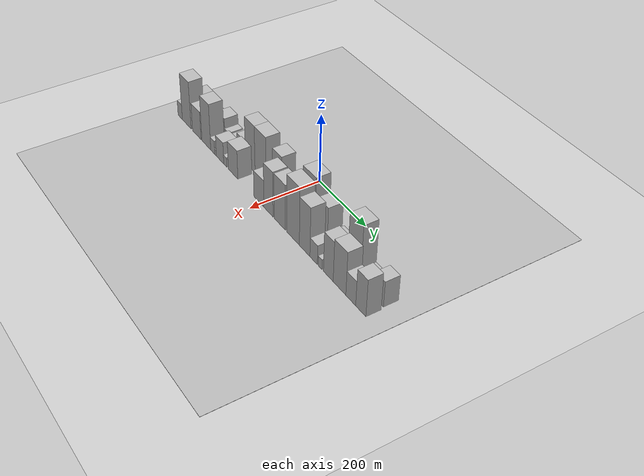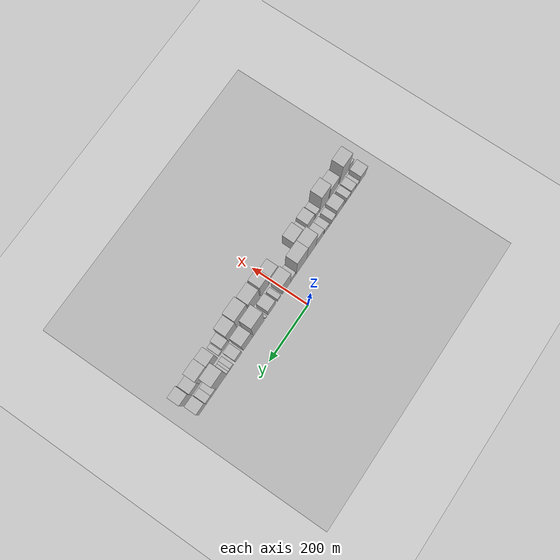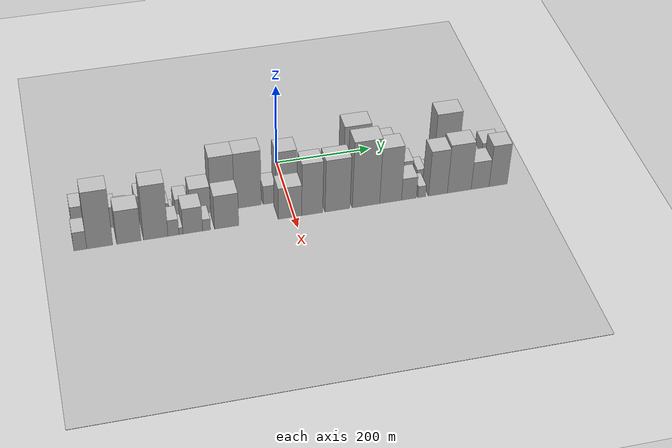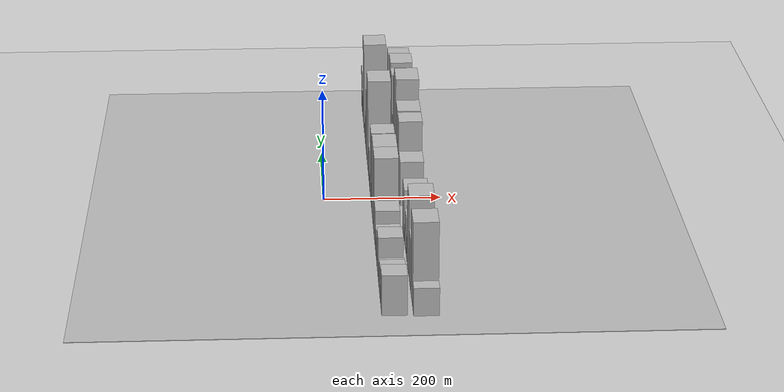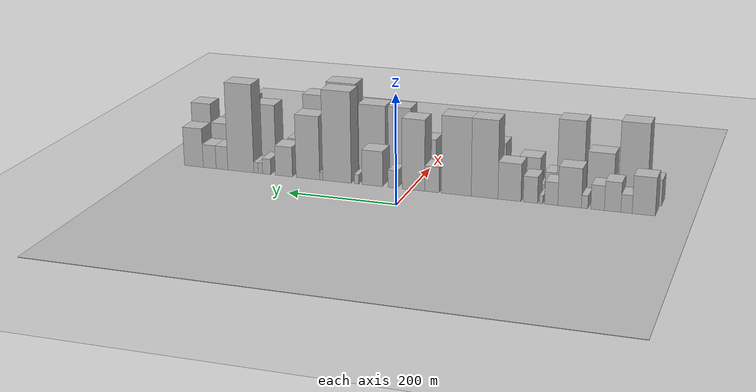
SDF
<sdf version="1.6">
 <world name="default">
  <include><name>ground_plane_1</name><uri>model://HANNAS_ground_plane</uri></include>
  <include>
   <name>ground_plane_2</name>
   <uri>model://HANNAS_ground_plane</uri>
   <pose>100 0 0  0 0 0</pose>
  </include>
  <model name="building_1">
   <static>1</static>
   <pose>100.0000 -415.2941 0 0.000000 0.000000 0.000000</pose>
   <link name="link">
    <pose>0 0 34.50 0 0 0</pose>
    <collision name="collision"><geometry><box><size>40.0000 39.4119 69.0000</size></box></geometry></collision>
    <visual name="visual">
     <cast_shadows>0</cast_shadows>
     <geometry><box><size>40.0000 39.4119 69.0000</size></box></geometry>
     <material>
      <script>
       <uri>model://HANNAS_wall/materials/scripts</uri>
       <uri>model://HANNAS_wall/materials/textures</uri>
       <name>vrc/HANNAS_wall</name>
      </script>
     </material>
    </visual>
   </link>
  </model>
  <model name="building_2">
   <static>1</static>
   <pose>100.0000 -385.9429 0 0.000000 0.000000 0.000000</pose>
   <link name="link">
    <pose>0 0 16.50 0 0 0</pose>
    <collision name="collision"><geometry><box><size>40.0000 19.2904 33.0000</size></box></geometry></collision>
    <visual name="visual">
     <cast_shadows>0</cast_shadows>
     <geometry><box><size>40.0000 19.2904 33.0000</size></box></geometry>
     <material>
      <script>
       <uri>model://HANNAS_wall/materials/scripts</uri>
       <uri>model://HANNAS_wall/materials/textures</uri>
       <name>vrc/HANNAS_wall</name>
      </script>
     </material>
    </visual>
   </link>
  </model>
  <model name="building_3">
   <static>1</static>
   <pose>100.0000 -362.1406 0 0.000000 0.000000 0.000000</pose>
   <link name="link">
    <pose>0 0 27.00 0 0 0</pose>
    <collision name="collision"><geometry><box><size>40.0000 28.3142 54.0000</size></box></geometry></collision>
    <visual name="visual">
     <cast_shadows>0</cast_shadows>
     <geometry><box><size>40.0000 28.3142 54.0000</size></box></geometry>
     <material>
      <script>
       <uri>model://HANNAS_wall/materials/scripts</uri>
       <uri>model://HANNAS_wall/materials/textures</uri>
       <name>vrc/HANNAS_wall</name>
      </script>
     </material>
    </visual>
   </link>
  </model>
  <model name="building_4">
   <static>1</static>
   <pose>100.0000 -336.1163 0 0.000000 0.000000 0.000000</pose>
   <link name="link">
    <pose>0 0 22.50 0 0 0</pose>
    <collision name="collision"><geometry><box><size>40.0000 23.7343 45.0000</size></box></geometry></collision>
    <visual name="visual">
     <cast_shadows>0</cast_shadows>
     <geometry><box><size>40.0000 23.7343 45.0000</size></box></geometry>
     <material>
      <script>
       <uri>model://HANNAS_wall/materials/scripts</uri>
       <uri>model://HANNAS_wall/materials/textures</uri>
       <name>vrc/HANNAS_wall</name>
      </script>
     </material>
    </visual>
   </link>
  </model>
  <model name="building_5">
   <static>1</static>
   <pose>100.0000 -313.6387 0 0.000000 0.000000 0.000000</pose>
   <link name="link">
    <pose>0 0 12.00 0 0 0</pose>
    <collision name="collision"><geometry><box><size>40.0000 11.2210 24.0000</size></box></geometry></collision>
    <visual name="visual">
     <cast_shadows>0</cast_shadows>
     <geometry><box><size>40.0000 11.2210 24.0000</size></box></geometry>
     <material>
      <script>
       <uri>model://HANNAS_wall/materials/scripts</uri>
       <uri>model://HANNAS_wall/materials/textures</uri>
       <name>vrc/HANNAS_wall</name>
      </script>
     </material>
    </visual>
   </link>
  </model>
  <model name="building_6">
   <static>1</static>
   <pose>100.0000 -287.4100 0 0.000000 0.000000 0.000000</pose>
   <link name="link">
    <pose>0 0 36.00 0 0 0</pose>
    <collision name="collision"><geometry><box><size>40.0000 41.2364 72.0000</size></box></geometry></collision>
    <visual name="visual">
     <cast_shadows>0</cast_shadows>
     <geometry><box><size>40.0000 41.2364 72.0000</size></box></geometry>
     <material>
      <script>
       <uri>model://HANNAS_wall/materials/scripts</uri>
       <uri>model://HANNAS_wall/materials/textures</uri>
       <name>vrc/HANNAS_wall</name>
      </script>
     </material>
    </visual>
   </link>
  </model>
  <model name="building_7">
   <static>1</static>
   <pose>100.0000 -255.0914 0 0.000000 0.000000 0.000000</pose>
   <link name="link">
    <pose>0 0 21.00 0 0 0</pose>
    <collision name="collision"><geometry><box><size>40.0000 23.4007 42.0000</size></box></geometry></collision>
    <visual name="visual">
     <cast_shadows>0</cast_shadows>
     <geometry><box><size>40.0000 23.4007 42.0000</size></box></geometry>
     <material>
      <script>
       <uri>model://HANNAS_wall/materials/scripts</uri>
       <uri>model://HANNAS_wall/materials/textures</uri>
       <name>vrc/HANNAS_wall</name>
      </script>
     </material>
    </visual>
   </link>
  </model>
  <model name="building_8">
   <static>1</static>
   <pose>100.0000 -237.1091 0 0.000000 0.000000 0.000000</pose>
   <link name="link">
    <pose>0 0 7.50 0 0 0</pose>
    <collision name="collision"><geometry><box><size>40.0000 6.5640 15.0000</size></box></geometry></collision>
    <visual name="visual">
     <cast_shadows>0</cast_shadows>
     <geometry><box><size>40.0000 6.5640 15.0000</size></box></geometry>
     <material>
      <script>
       <uri>model://HANNAS_wall/materials/scripts</uri>
       <uri>model://HANNAS_wall/materials/textures</uri>
       <name>vrc/HANNAS_wall</name>
      </script>
     </material>
    </visual>
   </link>
  </model>
  <model name="building_9">
   <static>1</static>
   <pose>100.0000 -218.1430 0 0.000000 0.000000 0.000000</pose>
   <link name="link">
    <pose>0 0 24.00 0 0 0</pose>
    <collision name="collision"><geometry><box><size>40.0000 25.3681 48.0000</size></box></geometry></collision>
    <visual name="visual">
     <cast_shadows>0</cast_shadows>
     <geometry><box><size>40.0000 25.3681 48.0000</size></box></geometry>
     <material>
      <script>
       <uri>model://HANNAS_wall/materials/scripts</uri>
       <uri>model://HANNAS_wall/materials/textures</uri>
       <name>vrc/HANNAS_wall</name>
      </script>
     </material>
    </visual>
   </link>
  </model>
  <model name="building_10">
   <static>1</static>
   <pose>100.0000 -180.8574 0 0.000000 0.000000 0.000000</pose>
   <link name="link">
    <pose>0 0 34.50 0 0 0</pose>
    <collision name="collision"><geometry><box><size>40.0000 41.2031 69.0000</size></box></geometry></collision>
    <visual name="visual">
     <cast_shadows>0</cast_shadows>
     <geometry><box><size>40.0000 41.2031 69.0000</size></box></geometry>
     <material>
      <script>
       <uri>model://HANNAS_wall/materials/scripts</uri>
       <uri>model://HANNAS_wall/materials/textures</uri>
       <name>vrc/HANNAS_wall</name>
      </script>
     </material>
    </visual>
   </link>
  </model>
  <model name="building_11">
   <static>1</static>
   <pose>100.0000 -136.1035 0 0.000000 0.000000 0.000000</pose>
   <link name="link">
    <pose>0 0 72.00 0 0 0</pose>
    <collision name="collision"><geometry><box><size>40.0000 48.3046 144.0000</size></box></geometry></collision>
    <visual name="visual">
     <cast_shadows>0</cast_shadows>
     <geometry><box><size>40.0000 48.3046 144.0000</size></box></geometry>
     <material>
      <script>
       <uri>model://HANNAS_wall/materials/scripts</uri>
       <uri>model://HANNAS_wall/materials/textures</uri>
       <name>vrc/HANNAS_wall</name>
      </script>
     </material>
    </visual>
   </link>
  </model>
  <model name="building_12">
   <static>1</static>
   <pose>100.0000 -84.6063 0 0.000000 0.000000 0.000000</pose>
   <link name="link">
    <pose>0 0 72.00 0 0 0</pose>
    <collision name="collision"><geometry><box><size>40.0000 54.6897 144.0000</size></box></geometry></collision>
    <visual name="visual">
     <cast_shadows>0</cast_shadows>
     <geometry><box><size>40.0000 54.6897 144.0000</size></box></geometry>
     <material>
      <script>
       <uri>model://HANNAS_wall/materials/scripts</uri>
       <uri>model://HANNAS_wall/materials/textures</uri>
       <name>vrc/HANNAS_wall</name>
      </script>
     </material>
    </visual>
   </link>
  </model>
  <model name="building_13">
   <static>1</static>
   <pose>100.0000 -40.0503 0 0.000000 0.000000 0.000000</pose>
   <link name="link">
    <pose>0 0 24.00 0 0 0</pose>
    <collision name="collision"><geometry><box><size>40.0000 26.4224 48.0000</size></box></geometry></collision>
    <visual name="visual">
     <cast_shadows>0</cast_shadows>
     <geometry><box><size>40.0000 26.4224 48.0000</size></box></geometry>
     <material>
      <script>
       <uri>model://HANNAS_wall/materials/scripts</uri>
       <uri>model://HANNAS_wall/materials/textures</uri>
       <name>vrc/HANNAS_wall</name>
      </script>
     </material>
    </visual>
   </link>
  </model>
  <model name="building_14">
   <static>1</static>
   <pose>100.0000 -5.6015 0 0.000000 0.000000 0.000000</pose>
   <link name="link">
    <pose>0 0 66.00 0 0 0</pose>
    <collision name="collision"><geometry><box><size>40.0000 42.4752 132.0000</size></box></geometry></collision>
    <visual name="visual">
     <cast_shadows>0</cast_shadows>
     <geometry><box><size>40.0000 42.4752 132.0000</size></box></geometry>
     <material>
      <script>
       <uri>model://HANNAS_wall/materials/scripts</uri>
       <uri>model://HANNAS_wall/materials/textures</uri>
       <name>vrc/HANNAS_wall</name>
      </script>
     </material>
    </visual>
   </link>
  </model>
  <model name="building_15">
   <static>1</static>
   <pose>100.0000 32.7132 0 0.000000 0.000000 0.000000</pose>
   <link name="link">
    <pose>0 0 16.50 0 0 0</pose>
    <collision name="collision"><geometry><box><size>40.0000 18.1542 33.0000</size></box></geometry></collision>
    <visual name="visual">
     <cast_shadows>0</cast_shadows>
     <geometry><box><size>40.0000 18.1542 33.0000</size></box></geometry>
     <material>
      <script>
       <uri>model://HANNAS_wall/materials/scripts</uri>
       <uri>model://HANNAS_wall/materials/textures</uri>
       <name>vrc/HANNAS_wall</name>
      </script>
     </material>
    </visual>
   </link>
  </model>
  <model name="building_16">
   <static>1</static>
   <pose>100.0000 71.2835 0 0.000000 0.000000 0.000000</pose>
   <link name="link">
    <pose>0 0 33.00 0 0 0</pose>
    <collision name="collision"><geometry><box><size>40.0000 38.9864 66.0000</size></box></geometry></collision>
    <visual name="visual">
     <cast_shadows>0</cast_shadows>
     <geometry><box><size>40.0000 38.9864 66.0000</size></box></geometry>
     <material>
      <script>
       <uri>model://HANNAS_wall/materials/scripts</uri>
       <uri>model://HANNAS_wall/materials/textures</uri>
       <name>vrc/HANNAS_wall</name>
      </script>
     </material>
    </visual>
   </link>
  </model>
  <model name="building_17">
   <static>1</static>
   <pose>100.0000 101.0707 0 0.000000 0.000000 0.000000</pose>
   <link name="link">
    <pose>0 0 9.00 0 0 0</pose>
    <collision name="collision"><geometry><box><size>40.0000 8.5879 18.0000</size></box></geometry></collision>
    <visual name="visual">
     <cast_shadows>0</cast_shadows>
     <geometry><box><size>40.0000 8.5879 18.0000</size></box></geometry>
     <material>
      <script>
       <uri>model://HANNAS_wall/materials/scripts</uri>
       <uri>model://HANNAS_wall/materials/textures</uri>
       <name>vrc/HANNAS_wall</name>
      </script>
     </material>
    </visual>
   </link>
  </model>
  <model name="building_18">
   <static>1</static>
   <pose>100.0000 138.6922 0 0.000000 0.000000 0.000000</pose>
   <link name="link">
    <pose>0 0 85.50 0 0 0</pose>
    <collision name="collision"><geometry><box><size>40.0000 54.6551 171.0000</size></box></geometry></collision>
    <visual name="visual">
     <cast_shadows>0</cast_shadows>
     <geometry><box><size>40.0000 54.6551 171.0000</size></box></geometry>
     <material>
      <script>
       <uri>model://HANNAS_wall/materials/scripts</uri>
       <uri>model://HANNAS_wall/materials/textures</uri>
       <name>vrc/HANNAS_wall</name>
      </script>
     </material>
    </visual>
   </link>
  </model>
  <model name="building_19">
   <static>1</static>
   <pose>100.0000 169.0247 0 0.000000 0.000000 0.000000</pose>
   <link name="link">
    <pose>0 0 7.50 0 0 0</pose>
    <collision name="collision"><geometry><box><size>40.0000 6.0099 15.0000</size></box></geometry></collision>
    <visual name="visual">
     <cast_shadows>0</cast_shadows>
     <geometry><box><size>40.0000 6.0099 15.0000</size></box></geometry>
     <material>
      <script>
       <uri>model://HANNAS_wall/materials/scripts</uri>
       <uri>model://HANNAS_wall/materials/textures</uri>
       <name>vrc/HANNAS_wall</name>
      </script>
     </material>
    </visual>
   </link>
  </model>
  <model name="building_20">
   <static>1</static>
   <pose>100.0000 194.8271 0 0.000000 0.000000 0.000000</pose>
   <link name="link">
    <pose>0 0 60.00 0 0 0</pose>
    <collision name="collision"><geometry><box><size>40.0000 45.5949 120.0000</size></box></geometry></collision>
    <visual name="visual">
     <cast_shadows>0</cast_shadows>
     <geometry><box><size>40.0000 45.5949 120.0000</size></box></geometry>
     <material>
      <script>
       <uri>model://HANNAS_wall/materials/scripts</uri>
       <uri>model://HANNAS_wall/materials/textures</uri>
       <name>vrc/HANNAS_wall</name>
      </script>
     </material>
    </visual>
   </link>
  </model>
  <model name="building_21">
   <static>1</static>
   <pose>100.0000 241.3620 0 0.000000 0.000000 0.000000</pose>
   <link name="link">
    <pose>0 0 28.50 0 0 0</pose>
    <collision name="collision"><geometry><box><size>40.0000 33.4750 57.0000</size></box></geometry></collision>
    <visual name="visual">
     <cast_shadows>0</cast_shadows>
     <geometry><box><size>40.0000 33.4750 57.0000</size></box></geometry>
     <material>
      <script>
       <uri>model://HANNAS_wall/materials/scripts</uri>
       <uri>model://HANNAS_wall/materials/textures</uri>
       <name>vrc/HANNAS_wall</name>
      </script>
     </material>
    </visual>
   </link>
  </model>
  <model name="building_22">
   <static>1</static>
   <pose>100.0000 275.3191 0 0.000000 0.000000 0.000000</pose>
   <link name="link">
    <pose>0 0 15.00 0 0 0</pose>
    <collision name="collision"><geometry><box><size>40.0000 16.4392 30.0000</size></box></geometry></collision>
    <visual name="visual">
     <cast_shadows>0</cast_shadows>
     <geometry><box><size>40.0000 16.4392 30.0000</size></box></geometry>
     <material>
      <script>
       <uri>model://HANNAS_wall/materials/scripts</uri>
       <uri>model://HANNAS_wall/materials/textures</uri>
       <name>vrc/HANNAS_wall</name>
      </script>
     </material>
    </visual>
   </link>
  </model>
  <model name="building_23">
   <static>1</static>
   <pose>100.0000 287.8888 0 0.000000 0.000000 0.000000</pose>
   <link name="link">
    <pose>0 0 10.50 0 0 0</pose>
    <collision name="collision"><geometry><box><size>40.0000 8.7002 21.0000</size></box></geometry></collision>
    <visual name="visual">
     <cast_shadows>0</cast_shadows>
     <geometry><box><size>40.0000 8.7002 21.0000</size></box></geometry>
     <material>
      <script>
       <uri>model://HANNAS_wall/materials/scripts</uri>
       <uri>model://HANNAS_wall/materials/textures</uri>
       <name>vrc/HANNAS_wall</name>
      </script>
     </material>
    </visual>
   </link>
  </model>
  <model name="building_24">
   <static>1</static>
   <pose>100.0000 296.4405 0 0.000000 0.000000 0.000000</pose>
   <link name="link">
    <pose>0 0 10.50 0 0 0</pose>
    <collision name="collision"><geometry><box><size>40.0000 8.4032 21.0000</size></box></geometry></collision>
    <visual name="visual">
     <cast_shadows>0</cast_shadows>
     <geometry><box><size>40.0000 8.4032 21.0000</size></box></geometry>
     <material>
      <script>
       <uri>model://HANNAS_wall/materials/scripts</uri>
       <uri>model://HANNAS_wall/materials/textures</uri>
       <name>vrc/HANNAS_wall</name>
      </script>
     </material>
    </visual>
   </link>
  </model>
  <model name="building_25">
   <static>1</static>
   <pose>100.0000 326.6454 0 0.000000 0.000000 0.000000</pose>
   <link name="link">
    <pose>0 0 84.00 0 0 0</pose>
    <collision name="collision"><geometry><box><size>40.0000 52.0065 168.0000</size></box></geometry></collision>
    <visual name="visual">
     <cast_shadows>0</cast_shadows>
     <geometry><box><size>40.0000 52.0065 168.0000</size></box></geometry>
     <material>
      <script>
       <uri>model://HANNAS_wall/materials/scripts</uri>
       <uri>model://HANNAS_wall/materials/textures</uri>
       <name>vrc/HANNAS_wall</name>
      </script>
     </material>
    </visual>
   </link>
  </model>
  <model name="building_26">
   <static>1</static>
   <pose>100.0000 364.3305 0 0.000000 0.000000 0.000000</pose>
   <link name="link">
    <pose>0 0 22.50 0 0 0</pose>
    <collision name="collision"><geometry><box><size>40.0000 23.3637 45.0000</size></box></geometry></collision>
    <visual name="visual">
     <cast_shadows>0</cast_shadows>
     <geometry><box><size>40.0000 23.3637 45.0000</size></box></geometry>
     <material>
      <script>
       <uri>model://HANNAS_wall/materials/scripts</uri>
       <uri>model://HANNAS_wall/materials/textures</uri>
       <name>vrc/HANNAS_wall</name>
      </script>
     </material>
    </visual>
   </link>
  </model>
  <model name="building_27">
   <static>1</static>
   <pose>100.0000 389.0521 0 0.000000 0.000000 0.000000</pose>
   <link name="link">
    <pose>0 0 22.50 0 0 0</pose>
    <collision name="collision"><geometry><box><size>40.0000 26.0795 45.0000</size></box></geometry></collision>
    <visual name="visual">
     <cast_shadows>0</cast_shadows>
     <geometry><box><size>40.0000 26.0795 45.0000</size></box></geometry>
     <material>
      <script>
       <uri>model://HANNAS_wall/materials/scripts</uri>
       <uri>model://HANNAS_wall/materials/textures</uri>
       <name>vrc/HANNAS_wall</name>
      </script>
     </material>
    </visual>
   </link>
  </model>
  <model name="building_28">
   <static>1</static>
   <pose>100.0000 421.1302 0 0.000000 0.000000 0.000000</pose>
   <link name="link">
    <pose>0 0 37.50 0 0 0</pose>
    <collision name="collision"><geometry><box><size>40.0000 38.0766 75.0000</size></box></geometry></collision>
    <visual name="visual">
     <cast_shadows>0</cast_shadows>
     <geometry><box><size>40.0000 38.0766 75.0000</size></box></geometry>
     <material>
      <script>
       <uri>model://HANNAS_wall/materials/scripts</uri>
       <uri>model://HANNAS_wall/materials/textures</uri>
       <name>vrc/HANNAS_wall</name>
      </script>
     </material>
    </visual>
   </link>
  </model>
  <model name="building_29">
   <static>1</static>
   <pose>149.0000 -425.5091 0 0.000000 0.000000 0.000000</pose>
   <link name="link">
    <pose>0 0 24.00 0 0 0</pose>
    <collision name="collision"><geometry><box><size>40.0000 24.9817 48.0000</size></box></geometry></collision>
    <visual name="visual">
     <cast_shadows>0</cast_shadows>
     <geometry><box><size>40.0000 24.9817 48.0000</size></box></geometry>
     <material>
      <script>
       <uri>model://HANNAS_wall/materials/scripts</uri>
       <uri>model://HANNAS_wall/materials/textures</uri>
       <name>vrc/HANNAS_wall</name>
      </script>
     </material>
    </visual>
   </link>
  </model>
  <model name="building_30">
   <static>1</static>
   <pose>149.0000 -387.8206 0 0.000000 0.000000 0.000000</pose>
   <link name="link">
    <pose>0 0 73.50 0 0 0</pose>
    <collision name="collision"><geometry><box><size>40.0000 50.3954 147.0000</size></box></geometry></collision>
    <visual name="visual">
     <cast_shadows>0</cast_shadows>
     <geometry><box><size>40.0000 50.3954 147.0000</size></box></geometry>
     <material>
      <script>
       <uri>model://HANNAS_wall/materials/scripts</uri>
       <uri>model://HANNAS_wall/materials/textures</uri>
       <name>vrc/HANNAS_wall</name>
      </script>
     </material>
    </visual>
   </link>
  </model>
  <model name="building_31">
   <static>1</static>
   <pose>149.0000 -330.9172 0 0.000000 0.000000 0.000000</pose>
   <link name="link">
    <pose>0 0 43.50 0 0 0</pose>
    <collision name="collision"><geometry><box><size>40.0000 47.4115 87.0000</size></box></geometry></collision>
    <visual name="visual">
     <cast_shadows>0</cast_shadows>
     <geometry><box><size>40.0000 47.4115 87.0000</size></box></geometry>
     <material>
      <script>
       <uri>model://HANNAS_wall/materials/scripts</uri>
       <uri>model://HANNAS_wall/materials/textures</uri>
       <name>vrc/HANNAS_wall</name>
      </script>
     </material>
    </visual>
   </link>
  </model>
  <model name="building_32">
   <static>1</static>
   <pose>149.0000 -278.1203 0 0.000000 0.000000 0.000000</pose>
   <link name="link">
    <pose>0 0 70.50 0 0 0</pose>
    <collision name="collision"><geometry><box><size>40.0000 48.1823 141.0000</size></box></geometry></collision>
    <visual name="visual">
     <cast_shadows>0</cast_shadows>
     <geometry><box><size>40.0000 48.1823 141.0000</size></box></geometry>
     <material>
      <script>
       <uri>model://HANNAS_wall/materials/scripts</uri>
       <uri>model://HANNAS_wall/materials/textures</uri>
       <name>vrc/HANNAS_wall</name>
      </script>
     </material>
    </visual>
   </link>
  </model>
  <model name="building_33">
   <static>1</static>
   <pose>149.0000 -243.2369 0 0.000000 0.000000 0.000000</pose>
   <link name="link">
    <pose>0 0 21.00 0 0 0</pose>
    <collision name="collision"><geometry><box><size>40.0000 21.5845 42.0000</size></box></geometry></collision>
    <visual name="visual">
     <cast_shadows>0</cast_shadows>
     <geometry><box><size>40.0000 21.5845 42.0000</size></box></geometry>
     <material>
      <script>
       <uri>model://HANNAS_wall/materials/scripts</uri>
       <uri>model://HANNAS_wall/materials/textures</uri>
       <name>vrc/HANNAS_wall</name>
      </script>
     </material>
    </visual>
   </link>
  </model>
  <model name="building_34">
   <static>1</static>
   <pose>149.0000 -228.3626 0 0.000000 0.000000 0.000000</pose>
   <link name="link">
    <pose>0 0 9.00 0 0 0</pose>
    <collision name="collision"><geometry><box><size>40.0000 8.1642 18.0000</size></box></geometry></collision>
    <visual name="visual">
     <cast_shadows>0</cast_shadows>
     <geometry><box><size>40.0000 8.1642 18.0000</size></box></geometry>
     <material>
      <script>
       <uri>model://HANNAS_wall/materials/scripts</uri>
       <uri>model://HANNAS_wall/materials/textures</uri>
       <name>vrc/HANNAS_wall</name>
      </script>
     </material>
    </visual>
   </link>
  </model>
  <model name="building_35">
   <static>1</static>
   <pose>149.0000 -204.7691 0 0.000000 0.000000 0.000000</pose>
   <link name="link">
    <pose>0 0 33.00 0 0 0</pose>
    <collision name="collision"><geometry><box><size>40.0000 39.0228 66.0000</size></box></geometry></collision>
    <visual name="visual">
     <cast_shadows>0</cast_shadows>
     <geometry><box><size>40.0000 39.0228 66.0000</size></box></geometry>
     <material>
      <script>
       <uri>model://HANNAS_wall/materials/scripts</uri>
       <uri>model://HANNAS_wall/materials/textures</uri>
       <name>vrc/HANNAS_wall</name>
      </script>
     </material>
    </visual>
   </link>
  </model>
  <model name="building_36">
   <static>1</static>
   <pose>149.0000 -177.3125 0 0.000000 0.000000 0.000000</pose>
   <link name="link">
    <pose>0 0 15.00 0 0 0</pose>
    <collision name="collision"><geometry><box><size>40.0000 15.8905 30.0000</size></box></geometry></collision>
    <visual name="visual">
     <cast_shadows>0</cast_shadows>
     <geometry><box><size>40.0000 15.8905 30.0000</size></box></geometry>
     <material>
      <script>
       <uri>model://HANNAS_wall/materials/scripts</uri>
       <uri>model://HANNAS_wall/materials/textures</uri>
       <name>vrc/HANNAS_wall</name>
      </script>
     </material>
    </visual>
   </link>
  </model>
  <model name="building_37">
   <static>1</static>
   <pose>149.0000 -137.1222 0 0.000000 0.000000 0.000000</pose>
   <link name="link">
    <pose>0 0 43.50 0 0 0</pose>
    <collision name="collision"><geometry><box><size>40.0000 48.4901 87.0000</size></box></geometry></collision>
    <visual name="visual">
     <cast_shadows>0</cast_shadows>
     <geometry><box><size>40.0000 48.4901 87.0000</size></box></geometry>
     <material>
      <script>
       <uri>model://HANNAS_wall/materials/scripts</uri>
       <uri>model://HANNAS_wall/materials/textures</uri>
       <name>vrc/HANNAS_wall</name>
      </script>
     </material>
    </visual>
   </link>
  </model>
  <model name="building_38">
   <static>1</static>
   <pose>149.0000 -9.1721 0 0.000000 0.000000 0.000000</pose>
   <link name="link">
    <pose>0 0 40.50 0 0 0</pose>
    <collision name="collision"><geometry><box><size>40.0000 47.8034 81.0000</size></box></geometry></collision>
    <visual name="visual">
     <cast_shadows>0</cast_shadows>
     <geometry><box><size>40.0000 47.8034 81.0000</size></box></geometry>
     <material>
      <script>
       <uri>model://HANNAS_wall/materials/scripts</uri>
       <uri>model://HANNAS_wall/materials/textures</uri>
       <name>vrc/HANNAS_wall</name>
      </script>
     </material>
    </visual>
   </link>
  </model>
  <model name="building_39">
   <static>1</static>
   <pose>149.0000 36.0908 0 0.000000 0.000000 0.000000</pose>
   <link name="link">
    <pose>0 0 67.50 0 0 0</pose>
    <collision name="collision"><geometry><box><size>40.0000 42.7225 135.0000</size></box></geometry></collision>
    <visual name="visual">
     <cast_shadows>0</cast_shadows>
     <geometry><box><size>40.0000 42.7225 135.0000</size></box></geometry>
     <material>
      <script>
       <uri>model://HANNAS_wall/materials/scripts</uri>
       <uri>model://HANNAS_wall/materials/textures</uri>
       <name>vrc/HANNAS_wall</name>
      </script>
     </material>
    </visual>
   </link>
  </model>
  <model name="building_40">
   <static>1</static>
   <pose>149.0000 88.0557 0 0.000000 0.000000 0.000000</pose>
   <link name="link">
    <pose>0 0 67.50 0 0 0</pose>
    <collision name="collision"><geometry><box><size>40.0000 51.2073 135.0000</size></box></geometry></collision>
    <visual name="visual">
     <cast_shadows>0</cast_shadows>
     <geometry><box><size>40.0000 51.2073 135.0000</size></box></geometry>
     <material>
      <script>
       <uri>model://HANNAS_wall/materials/scripts</uri>
       <uri>model://HANNAS_wall/materials/textures</uri>
       <name>vrc/HANNAS_wall</name>
      </script>
     </material>
    </visual>
   </link>
  </model>
  <model name="building_41">
   <static>1</static>
   <pose>149.0000 146.9951 0 0.000000 0.000000 0.000000</pose>
   <link name="link">
    <pose>0 0 85.50 0 0 0</pose>
    <collision name="collision"><geometry><box><size>40.0000 56.6715 171.0000</size></box></geometry></collision>
    <visual name="visual">
     <cast_shadows>0</cast_shadows>
     <geometry><box><size>40.0000 56.6715 171.0000</size></box></geometry>
     <material>
      <script>
       <uri>model://HANNAS_wall/materials/scripts</uri>
       <uri>model://HANNAS_wall/materials/textures</uri>
       <name>vrc/HANNAS_wall</name>
      </script>
     </material>
    </visual>
   </link>
  </model>
  <model name="building_42">
   <static>1</static>
   <pose>149.0000 198.0575 0 0.000000 0.000000 0.000000</pose>
   <link name="link">
    <pose>0 0 72.00 0 0 0</pose>
    <collision name="collision"><geometry><box><size>40.0000 45.4532 144.0000</size></box></geometry></collision>
    <visual name="visual">
     <cast_shadows>0</cast_shadows>
     <geometry><box><size>40.0000 45.4532 144.0000</size></box></geometry>
     <material>
      <script>
       <uri>model://HANNAS_wall/materials/scripts</uri>
       <uri>model://HANNAS_wall/materials/textures</uri>
       <name>vrc/HANNAS_wall</name>
      </script>
     </material>
    </visual>
   </link>
  </model>
  <model name="building_43">
   <static>1</static>
   <pose>149.0000 236.4512 0 0.000000 0.000000 0.000000</pose>
   <link name="link">
    <pose>0 0 28.50 0 0 0</pose>
    <collision name="collision"><geometry><box><size>40.0000 31.3343 57.0000</size></box></geometry></collision>
    <visual name="visual">
     <cast_shadows>0</cast_shadows>
     <geometry><box><size>40.0000 31.3343 57.0000</size></box></geometry>
     <material>
      <script>
       <uri>model://HANNAS_wall/materials/scripts</uri>
       <uri>model://HANNAS_wall/materials/textures</uri>
       <name>vrc/HANNAS_wall</name>
      </script>
     </material>
    </visual>
   </link>
  </model>
  <model name="building_44">
   <static>1</static>
   <pose>149.0000 263.2143 0 0.000000 0.000000 0.000000</pose>
   <link name="link">
    <pose>0 0 15.00 0 0 0</pose>
    <collision name="collision"><geometry><box><size>40.0000 16.1918 30.0000</size></box></geometry></collision>
    <visual name="visual">
     <cast_shadows>0</cast_shadows>
     <geometry><box><size>40.0000 16.1918 30.0000</size></box></geometry>
     <material>
      <script>
       <uri>model://HANNAS_wall/materials/scripts</uri>
       <uri>model://HANNAS_wall/materials/textures</uri>
       <name>vrc/HANNAS_wall</name>
      </script>
     </material>
    </visual>
   </link>
  </model>
  <model name="building_45">
   <static>1</static>
   <pose>149.0000 297.2201 0 0.000000 0.000000 0.000000</pose>
   <link name="link">
    <pose>0 0 58.50 0 0 0</pose>
    <collision name="collision"><geometry><box><size>40.0000 39.8198 117.0000</size></box></geometry></collision>
    <visual name="visual">
     <cast_shadows>0</cast_shadows>
     <geometry><box><size>40.0000 39.8198 117.0000</size></box></geometry>
     <material>
      <script>
       <uri>model://HANNAS_wall/materials/scripts</uri>
       <uri>model://HANNAS_wall/materials/textures</uri>
       <name>vrc/HANNAS_wall</name>
      </script>
     </material>
    </visual>
   </link>
  </model>
  <model name="building_46">
   <static>1</static>
   <pose>149.0000 342.3268 0 0.000000 0.000000 0.000000</pose>
   <link name="link">
    <pose>0 0 63.00 0 0 0</pose>
    <collision name="collision"><geometry><box><size>40.0000 50.3935 126.0000</size></box></geometry></collision>
    <visual name="visual">
     <cast_shadows>0</cast_shadows>
     <geometry><box><size>40.0000 50.3935 126.0000</size></box></geometry>
     <material>
      <script>
       <uri>model://HANNAS_wall/materials/scripts</uri>
       <uri>model://HANNAS_wall/materials/textures</uri>
       <name>vrc/HANNAS_wall</name>
      </script>
     </material>
    </visual>
   </link>
  </model>
  <model name="building_47">
   <static>1</static>
   <pose>149.0000 386.5745 0 0.000000 0.000000 0.000000</pose>
   <link name="link">
    <pose>0 0 36.00 0 0 0</pose>
    <collision name="collision"><geometry><box><size>40.0000 38.1021 72.0000</size></box></geometry></collision>
    <visual name="visual">
     <cast_shadows>0</cast_shadows>
     <geometry><box><size>40.0000 38.1021 72.0000</size></box></geometry>
     <material>
      <script>
       <uri>model://HANNAS_wall/materials/scripts</uri>
       <uri>model://HANNAS_wall/materials/textures</uri>
       <name>vrc/HANNAS_wall</name>
      </script>
     </material>
    </visual>
   </link>
  </model>
  <model name="building_48">
   <static>1</static>
   <pose>149.0000 425.0448 0 0.000000 0.000000 0.000000</pose>
   <link name="link">
    <pose>0 0 54.00 0 0 0</pose>
    <collision name="collision"><geometry><box><size>40.0000 38.8384 108.0000</size></box></geometry></collision>
    <visual name="visual">
     <cast_shadows>0</cast_shadows>
     <geometry><box><size>40.0000 38.8384 108.0000</size></box></geometry>
     <material>
      <script>
       <uri>model://HANNAS_wall/materials/scripts</uri>
       <uri>model://HANNAS_wall/materials/textures</uri>
       <name>vrc/HANNAS_wall</name>
      </script>
     </material>
    </visual>
   </link>
  </model>
 </world>
</sdf>
